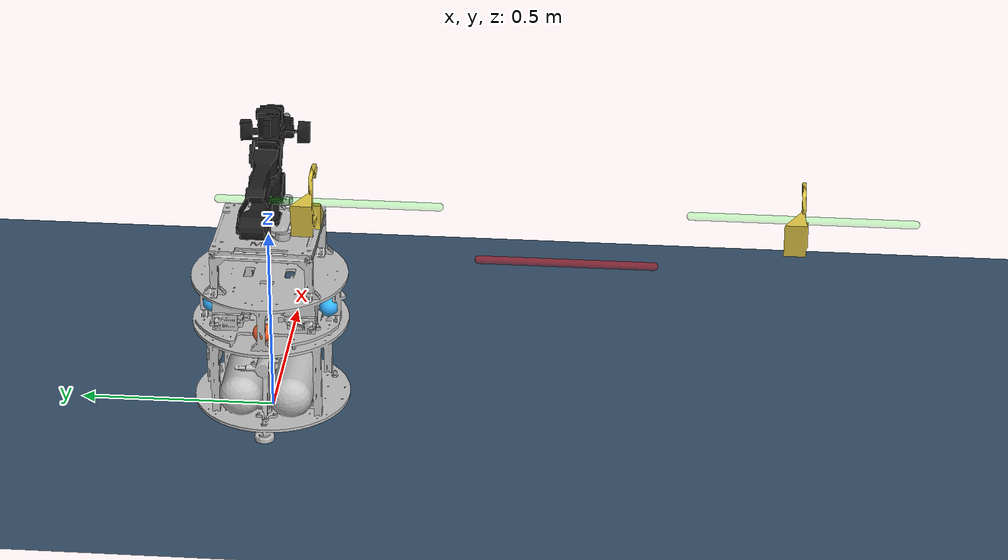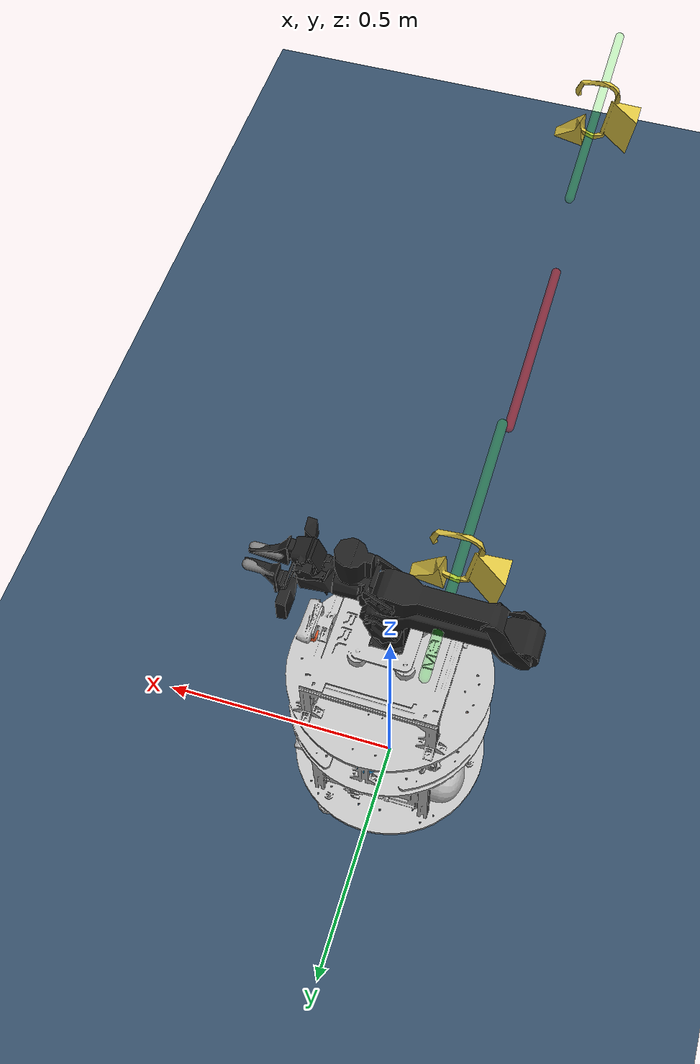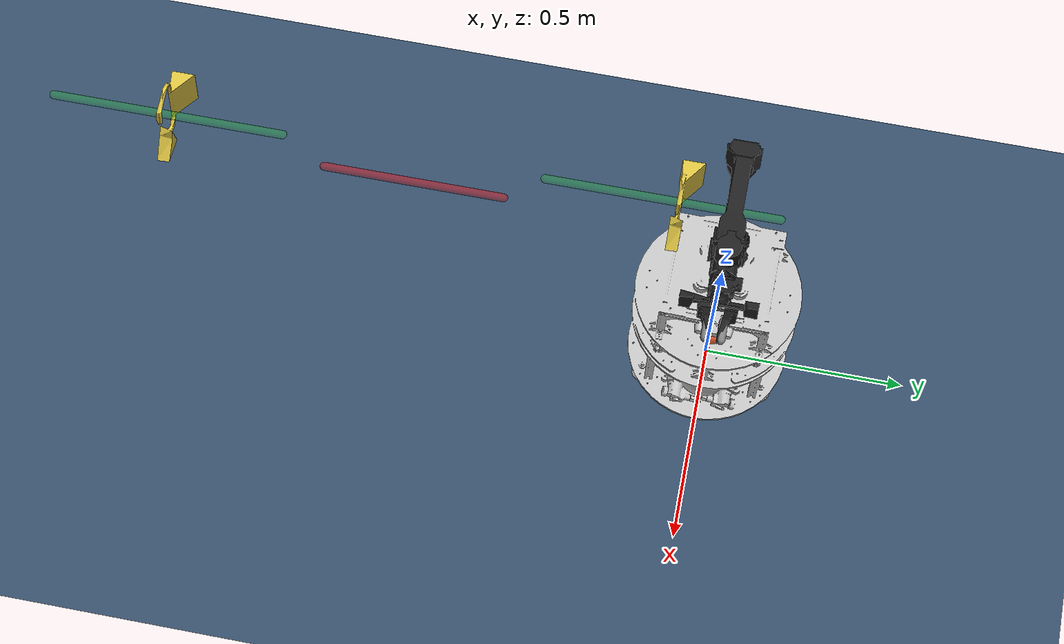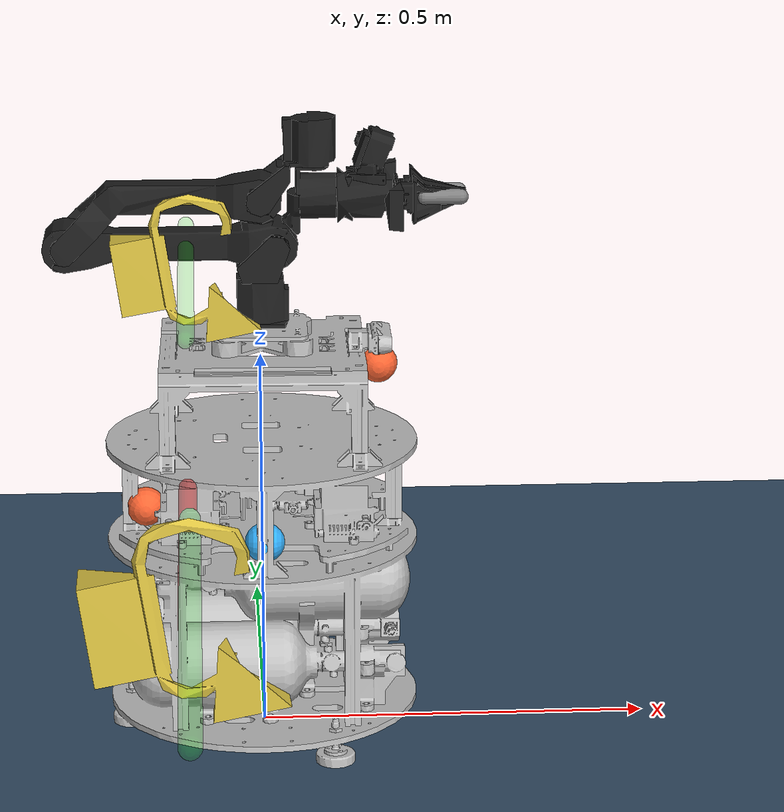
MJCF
<mujoco model="atmos_m3">
    <compiler angle="radian" meshdir="meshes" texturedir="meshes" autolimits="true" eulerseq="ZYX"/>

    <!-- Pull in the complete robot definition -->
    <include file="atmos_robot.xml"/>

    <!-- Free-floating carabiners (4-capsule decomposition collision) -->
    <include file="meshes_blender/simplified/simplified_carabiner/left_carabiner.xml"/>
    <include file="meshes_blender/simplified/simplified_carabiner/right_carabiner.xml"/>

    <asset>
        <texture name="grid" type="2d" builtin="checker"
                 rgb1="0.15 0.25 0.35" rgb2="0.25 0.35 0.45"
                 width="512" height="512" mark="cross" markrgb="0.6 0.7 0.8"/>
        <material name="grid" texture="grid" texrepeat="5 5" reflectance="0.15"/>
    </asset>

    <visual>
        <headlight ambient="0.3 0.3 0.3" diffuse="0.6 0.6 0.6" specular="0.1 0.1 0.1"/>
        <map shadowclip="1"/>
    </visual>

    <worldbody>
        <light name="key"  pos=" 0  -4  6" dir="0  0.5 -1"
               diffuse="0.8 0.8 0.8" specular="0.3 0.3 0.3" castshadow="true"/>
        <light name="fill" pos=" 3   2  4" dir="-0.5 -0.3 -1"
               diffuse="0.35 0.35 0.35" specular="0.0 0.0 0.0"/>
        <light name="back" pos="-1   4  3" dir="0.2 -0.6 -0.5"
               diffuse="0.2 0.2 0.2" specular="0.0 0.0 0.0"/>

        <geom name="ground" type="plane" size="10 10 0.1"
              material="grid" contype="0" conaffinity="0"/>

        <camera name="track" pos="0 -5 4" xyaxes="1 0 0 0 0.6 0.8"
                fovy="45" mode="trackcom"/>

        <!-- Three floating handle boxes (carabiner-collidable) -->
        <body name="handles" pos="0 -0.7335875 0" xyaxes="-1 0 0 0 -1 0">
            <geom type="capsule" fromto="0.0877875 0.330675 0.6447  0.0877875 0.882175 0.6447" size="0.01" rgba="0 1 0 0.2" contype="4" conaffinity="2"/>
            <geom type="capsule" fromto="0.09255 -0.8424875 0.6447  0.09255 -0.2909875 0.6447" size="0.01" rgba="0 1 0 0.2" contype="4" conaffinity="2"/>
            <geom type="capsule" fromto="0.09255 -0.1932 0.50165  0.09255 0.244 0.50165" size="0.01" rgba="1 0 0 0.4" contype="4" conaffinity="2"/>
        </body>

    </worldbody>
</mujoco>

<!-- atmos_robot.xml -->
<mujoco model="atmos_m3_robot">
    <!-- Standalone (no scene decorations). Same joints/actuators as scene.xml. -->
    <compiler angle="radian" meshdir="meshes_blender" texturedir="meshes" autolimits="true" eulerseq="ZYX"/>
    <option timestep="0.015" gravity="0 0 -9.8" iterations="3" ls_iterations="4" integrator="implicitfast"/>

    <asset>
        <texture type="2d" file="trossen_black.png"/>
        <material name="black" texture="trossen_black"/>
        <mesh name="atmos"             file="m3_light.stl" scale="0.001 0.001 0.001"/>
        <mesh name="base_link"         file="base_link.stl"/>
        <mesh name="link_1"            file="link_1.stl"/>
        <mesh name="link_2"            file="link_2.stl"/>
        <mesh name="link_3"            file="link_3.stl"/>
        <mesh name="link_4"            file="link_4.stl"/>
        <mesh name="link_5"            file="link_5.stl"/>
        <mesh name="link_6"            file="link_6.stl"/>
        <mesh name="carriage_left"     file="carriage_left.stl"/>
        <mesh name="carriage_right"    file="carriage_right.stl"/>
        <mesh name="gripper_right"     file="gripper_right.stl"/>
        <mesh name="gripper_left"      file="gripper_left.stl"/>
        <mesh name="camera_mount_d405" file="camera_mount_d405.stl"/>
    </asset>

    <default>
        <default class="wxai">
            <mesh scale="1.0 1.0 1.0"/>
            <joint axis="0 1 0" frictionloss="0.1" damping="0.2" armature="0.1"/>
            <position kp="100" inheritrange="1" dampratio="0.95" forcerange="-55 55"/>
            <default class="visual">
                <geom type="mesh" contype="0" conaffinity="0" density="0"
                      group="2" material="black"/>
            </default>
            <default class="collision">
                <geom group="3" type="mesh" contype="0" conaffinity="0"/>
            </default>
            <default class="gripper">
                <position kp="50" inheritrange="1" dampratio="1.0" forcerange="-10 10"/>
            </default>
        </default>
    </default>

    <worldbody>
        <body name="atmos" pos="0 0 0">
            <inertial pos="0 0 0.254" xyaxes="0 0 1 -1 0 0"
                      mass="16.8" diaginertia="0.297 0.51 0.56"/>
            <joint name="slide_x" type="slide" axis="1 0 0" damping="0.0"/>
            <joint name="slide_y" type="slide" axis="0 1 0" damping="0.0"/>
            <joint name="hinge_z" type="hinge" axis="0 0 1" damping="0.0"/>
            <geom type="mesh" mesh="atmos" rgba="0.75 0.75 0.75 1"
                  contype="0" conaffinity="0"/>
            <site name="thruster_f" pos=" 0.15  0.0  0.486"
                  xyaxes="1 0 0  0 0 -1" size="0.025" rgba="1.0 0.4 0.2 1"/>
            <site name="thruster_b" pos="-0.15  0.0  0.298"
                  xyaxes="1 0 0  0 0  1" size="0.025" rgba="1.0 0.4 0.2 1"/>
            <site name="thruster_r" pos=" 0.0  -0.15 0.298"
                  xyaxes="0 1 0  0 0  1" size="0.025" rgba="0.2 0.7 1.0 1"/>
            <site name="thruster_l" pos=" 0.0   0.15 0.298"
                  xyaxes="0 1 0  0 0 -1" size="0.025" rgba="0.2 0.7 1.0 1"/>
            <site name="body_com"   pos="0 0 0.254" size="0.01" rgba="0 1 0 1"/>

            <body name="left/root" pos="0.0 0.0 0.54293930455"
                  quat="1.0 0 0 0">
                <geom type="mesh" mesh="base_link" class="visual"/>
                <geom type="mesh" mesh="base_link" class="collision"/>
                <body name="left/link_1" pos="0 0 0.05725">
                    <inertial pos="-0.00011075 0.00171176 0.0204459"
                              quat="0.313955 0.305238 -0.643575 0.627752"
                              mass="0.152704"
                              diaginertia="0.000203432 0.000173907 8.3521e-05"/>
                    <joint name="left/joint_0" axis="0 0 1"
                           range="-3.05433 3.05433" actuatorfrcrange="-27 27"
                           actuatorgravcomp="true"/>
                    <geom type="mesh" mesh="link_1" class="visual"/>
                    <geom type="mesh" mesh="link_1" class="collision"/>
                    <body name="left/link_2" pos="0.02 0 0.04625">
                        <inertial pos="-0.131215 -0.00292583 0.00021345"
                                  quat="-0.00123582 0.706546 -0.00109575 0.707665"
                                  mass="1.15316"
                                  diaginertia="0.0179449 0.0173612 0.00102628"/>
                        <joint name="left/joint_1" axis="0 1 0"
                               range="0 3.14159" actuatorfrcrange="-27 27"
                               actuatorgravcomp="true"/>
                        <geom type="mesh" mesh="link_2" class="visual"/>
                        <geom type="mesh" mesh="link_2" class="collision"/>
                        <body name="left/link_3" pos="-0.264 0 0">
                            <inertial pos="0.180836 -0.0009409 0.0555494"
                                      quat="0.0103901 0.669684 -0.0033175 0.742566"
                                      mass="0.686666"
                                      diaginertia="0.00566898 0.00547578 0.00059316"/>
                            <joint name="left/joint_2" axis="0 -1 0"
                                   range="0.0 2.35619" actuatorfrcrange="-27 27"
                                   actuatorgravcomp="true"/>
                            <geom type="mesh" mesh="link_3" class="visual"/>
                            <geom type="mesh" mesh="link_3" class="collision"/>
                            <body name="left/link_4" pos="0.245 0 0.06">
                                <inertial pos="0.0579784 0.00027145 0.0588445"
                                          quat="0.948688 0.0346237 0.307828 0.0635164"
                                          mass="0.457899"
                                          diaginertia="0.000670827 0.000661455 0.000288648"/>
                                <joint name="left/joint_3" axis="0 -1 0"
                                       range="-1.5708 1.5708" actuatorfrcrange="-7 7"
                                       actuatorgravcomp="true"/>
                                <geom type="mesh" mesh="link_4" class="visual"/>
                                <geom type="mesh" mesh="link_4" class="collision"/>
                                <body name="left/link_5" pos="0.06775 0 0.0455">
                                    <inertial pos="0.00412447 -1.138e-05 -0.0428318"
                                              quat="0.496144 0.502128 0.503595 0.498098"
                                              mass="0.366939"
                                              diaginertia="0.000320622 0.00026751 0.000189108"/>
                                    <joint name="left/joint_4" axis="0 0 -1"
                                           range="-1.5708 1.5708" actuatorfrcrange="-7 7"
                                           actuatorgravcomp="true"/>
                                    <geom type="mesh" mesh="link_5" class="visual"/>
                                    <geom type="mesh" mesh="link_5" class="collision"/>
                                    <body name="left/link_6" pos="0.02895 0 -0.0455">
                                        <inertial pos="0.0470282 0.00141143 0.00922376"
                                                  quat="0.274972 0.289957 -0.694213 0.598652"
                                                  mass="0.673874"
                                                  diaginertia="0.00139668 0.00131951 0.00100756"/>
                                        <joint name="left/joint_5" axis="1 0 0"
                                               range="-3.14159 3.14159"
                                               actuatorfrcrange="-7 7"
                                               actuatorgravcomp="true"/>
                                        <geom type="mesh" mesh="link_6" class="visual"/>
                                        <geom type="mesh" mesh="link_6" class="collision"/>
                                        <geom type="mesh" mesh="camera_mount_d405"
                                              pos="0.012 0 0" class="visual"/>
                                        <geom type="mesh" mesh="camera_mount_d405"
                                              pos="0.012 0 0" class="collision"/>
                                        <geom type="box"
                                              size="0.0115 0.021 0.021"
                                              pos="0.0393206 0 0.0569399"
                                              quat="0.984808 0 0.173648 0"
                                              class="visual"/>
                                        <body name="left/carriage_right" pos="0.0944375 -0.0309385 0">
                                            <inertial pos="0.00169015 0.00592793 0.00201817"
                                                      quat="-0.370973 0.740886 -0.0847721 0.553427"
                                                      mass="0.081271"
                                                      diaginertia="4.29565e-05 3.87081e-05 2.21528e-05"/>
                                            <joint name="left/right_carriage_joint"
                                                   type="slide" axis="0 -1 0"
                                                   range="0 0.05"
                                                   actuatorfrcrange="-400 400"
                                                   actuatorgravcomp="true" stiffness="50"/>
                                            <geom type="mesh" mesh="carriage_right" class="visual"/>
                                            <geom type="mesh" mesh="carriage_right" class="collision"/>
                                            <geom type="mesh" mesh="gripper_right" class="visual"/>
                                            <geom name="left/gripper_follower_right_tip"
                                                  type="capsule"
                                                  fromto="0.016 0.013 0.000  0.061 0.013 0.000"
                                                  size="0.01"
                                                  contype="1" conaffinity="2"
                                                  friction="2.0 0.02 0.01" condim="4"
                                                  solimp="0.95 0.95 0.001" solref="0.02 1"/>
                                        </body>
                                        <body name="left/carriage_left" pos="0.0944375 0.0309385 0">
                                            <inertial pos="0.00169017 -0.00592796 -0.00365701"
                                                      quat="-0.0382691 0.628022 -0.255101 0.734198"
                                                      mass="0.081271"
                                                      diaginertia="4.21112e-05 3.61943e-05 2.40003e-05"/>
                                            <joint name="left/left_carriage_joint"
                                                   type="slide" axis="0 1 0"
                                                   range="0 0.05"
                                                   actuatorfrcrange="-400 400"
                                                   actuatorgravcomp="true" stiffness="50"/>
                                            <geom type="mesh" mesh="carriage_left" class="visual"/>
                                            <geom type="mesh" mesh="carriage_left" class="collision"/>
                                            <geom type="mesh" mesh="gripper_left" class="visual"/>
                                            <geom name="left/gripper_follower_left_tip"
                                                  type="capsule"
                                                  fromto="0.016 -0.013 0.000  0.061 -0.013 0.000"
                                                  size="0.01"
                                                  contype="1" conaffinity="2"
                                                  friction="2.0 0.02 0.01" condim="4"
                                                  solimp="0.95 0.95 0.001" solref="0.02 1"/>
                                        </body>
                                    </body>
                                </body>
                            </body>
                        </body>
                    </body>
                </body>
            </body>
        </body>
    </worldbody>

    <contact>
        <exclude body1="left/carriage_right" body2="left/carriage_left"/>
    </contact>

    <actuator>
        <general name="force_x"  joint="slide_x" gear="1" ctrllimited="true" ctrlrange="-30 30"/>
        <general name="force_y"  joint="slide_y" gear="1" ctrllimited="true" ctrlrange="-30 30"/>
        <general name="torque_z" joint="hinge_z" gear="1" ctrllimited="true" ctrlrange="-10 10"/>
        <position name="left/joint_0"  joint="left/joint_0"             class="wxai"/>
        <position name="left/joint_1"  joint="left/joint_1"             class="wxai"/>
        <position name="left/joint_2"  joint="left/joint_2"             class="wxai"/>
        <position name="left/joint_3"  joint="left/joint_3"             class="wxai"/>
        <position name="left/joint_4"  joint="left/joint_4"             class="wxai"/>
        <position name="left/joint_5"  joint="left/joint_5"             class="wxai"/>
        <position name="left/joint_gr" joint="left/right_carriage_joint" class="gripper"/>
        <position name="left/joint_gl" joint="left/left_carriage_joint"  class="gripper"/>
    </actuator>
</mujoco>

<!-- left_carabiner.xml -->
<mujoco model="left_carabiner">
  <compiler inertiafromgeom="auto"/>
  <default>
    <default class="lcar_visual">
      <geom group="2" type="mesh" contype="0" conaffinity="0"/>
    </default>
    <default class="lcar_collision">
      <!-- contype=2 (carabiner bit); conaffinity=5 = grippers(1) | handles(4) -->
      <geom group="3" type="capsule" mass="0" contype="2" conaffinity="5"/>
    </default>
  </default>
  <asset>
    <mesh name="lcar_visual_mesh" file="simplified/simplified_carabiner/simplified_carabiner.obj" scale="0.001 0.001 0.001"/>
  </asset>
  <worldbody>
    <body name="left_carabiner" pos="-0.0877875 -1.3400125 0.6557975" quat="0.5 0.5 -0.5 -0.5">
      <freejoint/>
      <inertial pos="-0.006263 -0.034070 -0.030525" mass="0.242"
                quat="0.698782 0.129047 -0.667590 -0.222204"
                diaginertia="4.268038e-04 6.904647e-04 1.036829e-03"/>
      <geom mesh="lcar_visual_mesh" class="lcar_visual" rgba="0.85 0.75 0.25 1"/>
      <!-- 4-capsule decomposition: top arc, gate-inner, spine, bottom diagonal -->
      <geom class="lcar_collision" fromto="-0.00199  0.07200 -0.04200  -0.00199  0.07200  0.03800" size="0.01500"/>
      <geom class="lcar_collision" fromto="-0.00199  0.05000 -0.04200  -0.00199  0.03200 -0.04200" size="0.01100"/>
      <geom class="lcar_collision" fromto="-0.01692 -0.07000  0.05000  -0.01692  0.02200  0.05000" size="0.04000"/>
      <geom class="lcar_collision" fromto=" 0.00000 -0.07000 -0.06000   0.00000 -0.04000 -0.01000" size="0.02400"/>
    </body>
  </worldbody>
</mujoco>

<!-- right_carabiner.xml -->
<mujoco model="right_carabiner">
  <compiler inertiafromgeom="auto"/>
  <default>
    <default class="rcar_visual">
      <geom group="2" type="mesh" contype="0" conaffinity="0"/>
    </default>
    <default class="rcar_collision">
      <!-- contype=2 (carabiner bit); conaffinity=5 = grippers(1) | handles(4) -->
      <geom group="3" type="capsule" mass="0" contype="2" conaffinity="5"/>
    </default>
  </default>
  <asset>
    <mesh name="rcar_visual_mesh" file="simplified/simplified_carabiner/simplified_carabiner.obj" scale="0.001 0.001 0.001"/>
  </asset>
  <worldbody>
    <body name="right_carabiner" pos="-0.0877875 -0.1271625 0.6557975" quat="0.5 0.5 -0.5 -0.5">
      <freejoint/>
      <inertial pos="-0.006263 -0.034070 -0.030525" mass="0.242"
                quat="0.698782 0.129047 -0.667590 -0.222204"
                diaginertia="4.268038e-04 6.904647e-04 1.036829e-03"/>
      <geom mesh="rcar_visual_mesh" class="rcar_visual" rgba="0.85 0.75 0.25 1"/>
      <!-- 4-capsule decomposition: top arc, gate-inner, spine, bottom diagonal -->
      <geom class="rcar_collision" fromto="-0.00199  0.07200 -0.04200  -0.00199  0.07200  0.03800" size="0.01500"/>
      <geom class="rcar_collision" fromto="-0.00199  0.05000 -0.04200  -0.00199  0.03200 -0.04200" size="0.01100"/>
      <geom class="rcar_collision" fromto="-0.01692 -0.07000  0.05000  -0.01692  0.02200  0.05000" size="0.04000"/>
      <geom class="rcar_collision" fromto=" 0.00000 -0.07000 -0.06000   0.00000 -0.04000 -0.01000" size="0.02400"/>
    </body>
  </worldbody>
</mujoco>
